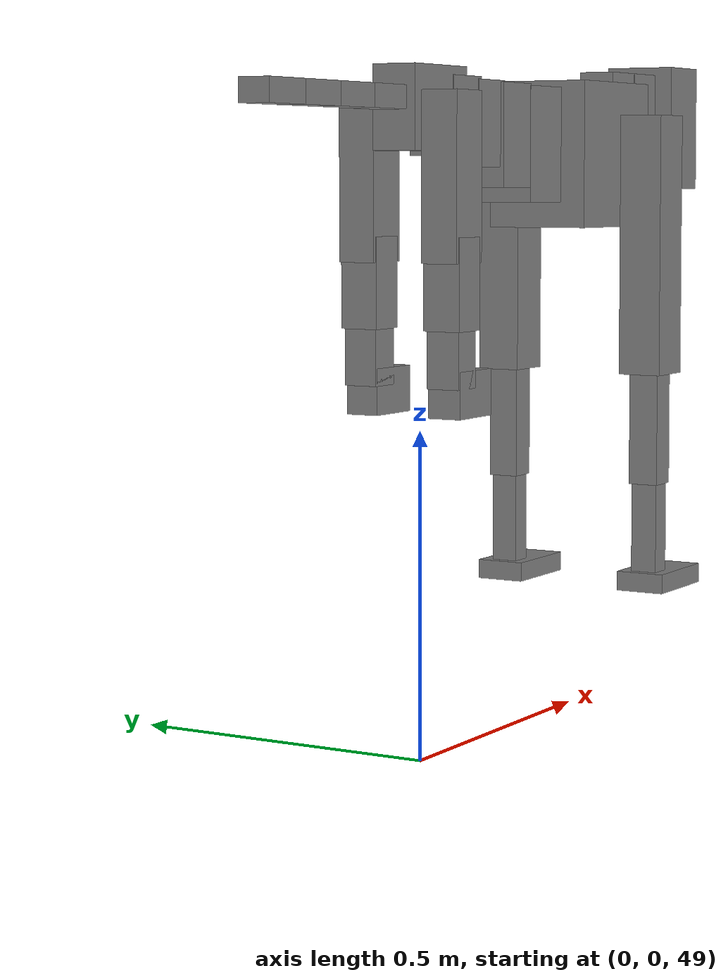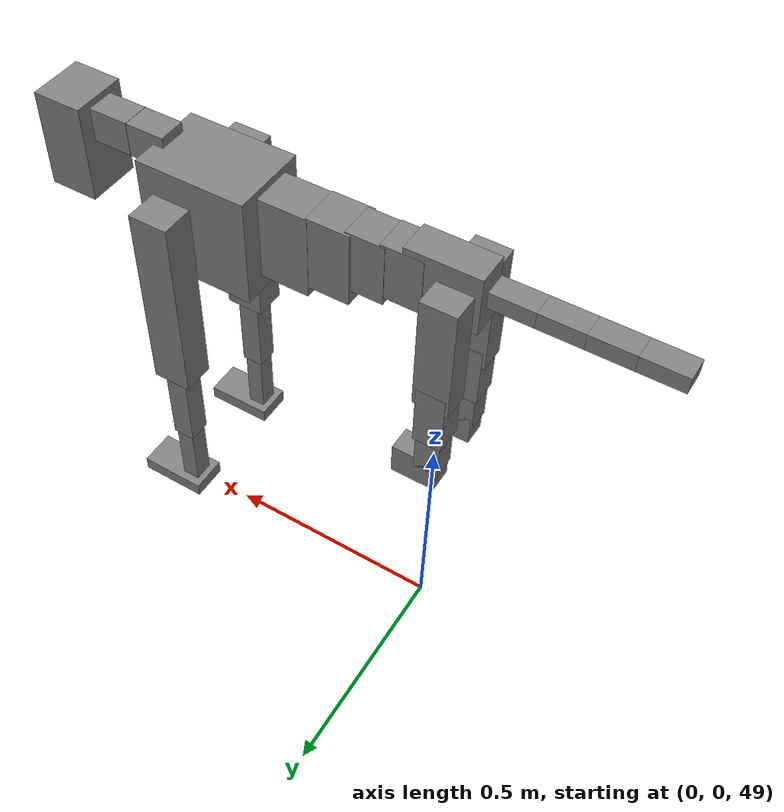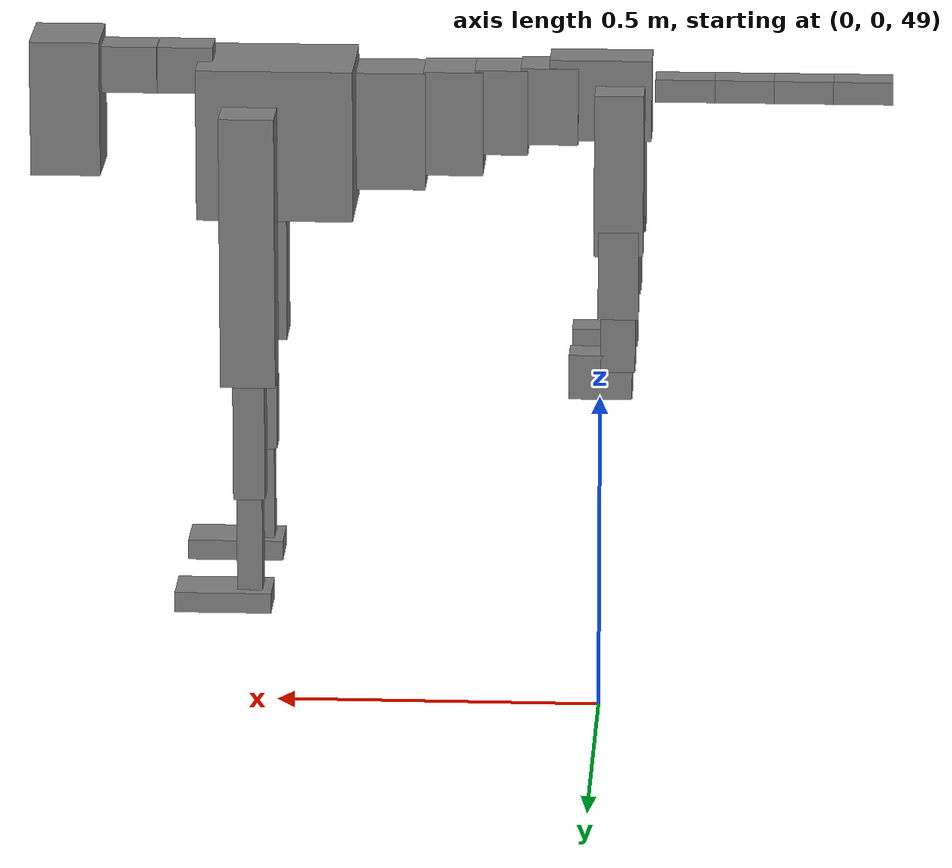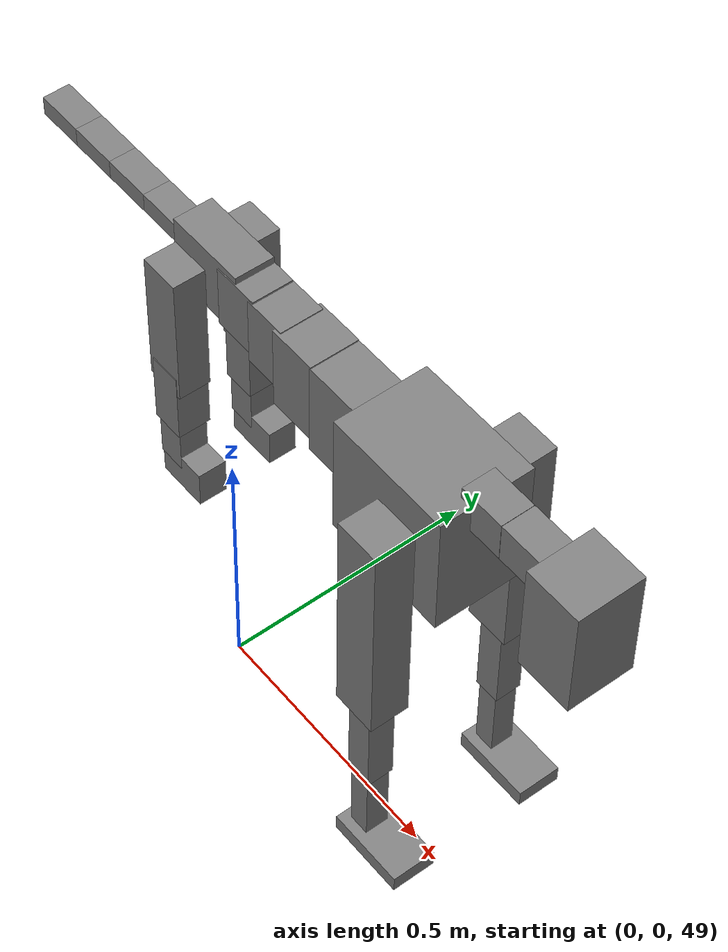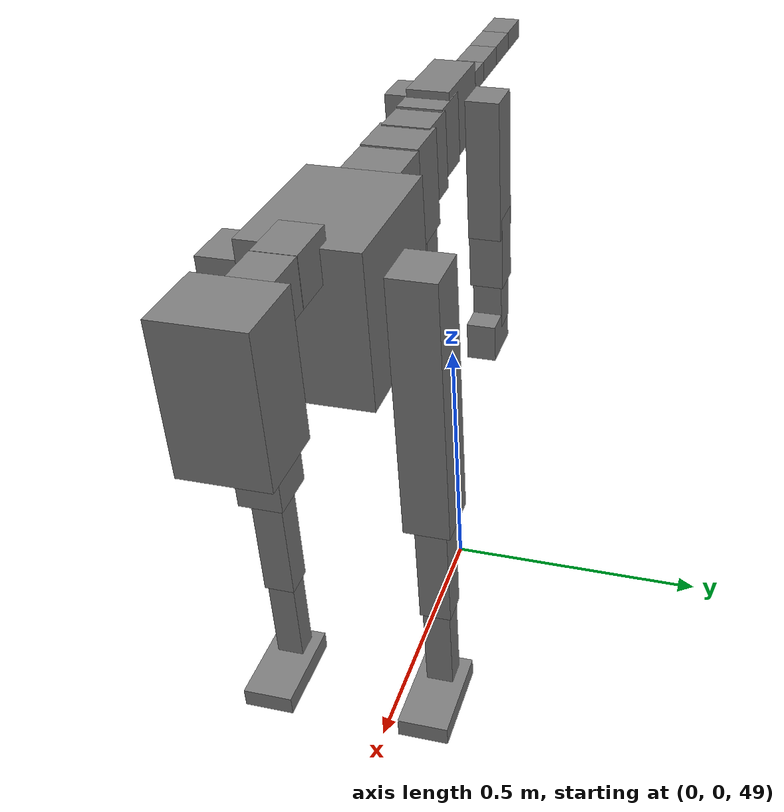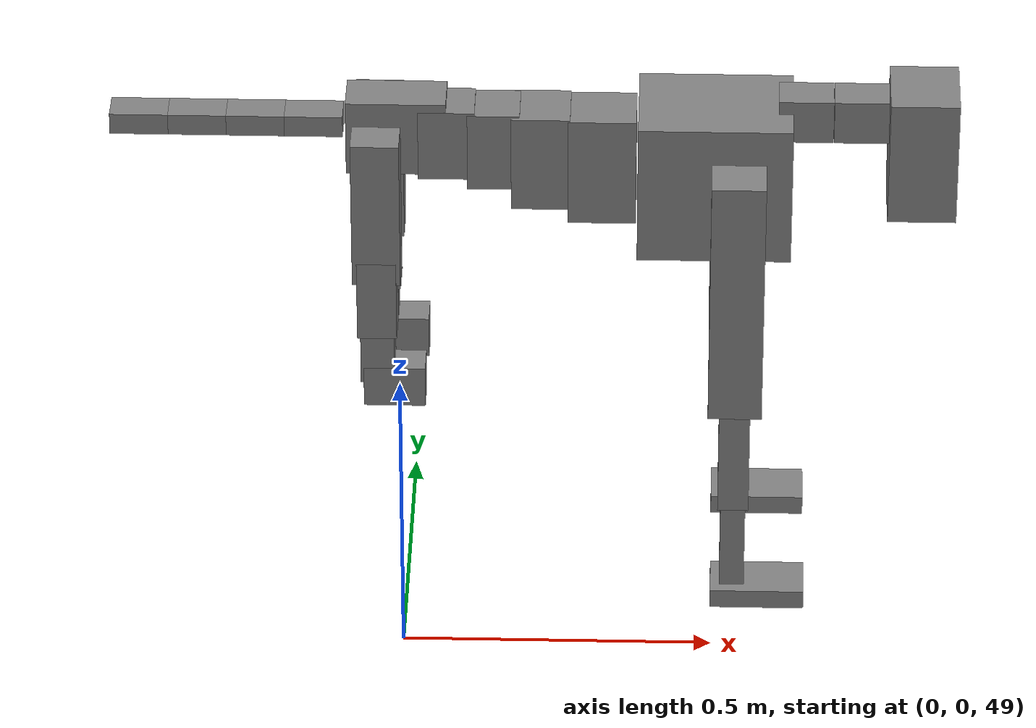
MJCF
<mujoco model="dog">

    <default>
        <joint armature="0.02" stiffness="1" damping="0.2" limited="true"/>
        <geom condim="3" friction="1 0.05 0.05" margin="0.01"/>
        <motor ctrllimited="true" ctrlrange="-1.0 1.0" forcelimited="true" gear="50"/>
    </default>

    <compiler inertiafromgeom="true" angle="radian"/>

    <option timestep="0.016" iterations="50" tolerance="1e-10" solver="Newton" jacobian="dense" cone="pyramidal"/>

    <size nconmax="20000" njmax="60000" nstack="5000000"/>
    <visual>
        <map force="0.1" zfar="30"/>
        <rgba haze="0.15 0.25 0.35 1"/>
        <quality shadowsize="2048"/>
        <global offwidth="800" offheight="800"/>
    </visual>

    <asset>
        <texture type="skybox" builtin="gradient" rgb1="0.3 0.5 0.7" rgb2="0 0 0" width="512" height="512"/>
        <texture name="texplane" type="2d" builtin="checker" rgb1=".2 .3 .4" rgb2=".1 0.15 0.2" width="512" height="512"
                 mark="cross" markrgb=".8 .8 .8"/>
        <texture name="texgeom" type="cube" builtin="flat" mark="cross" width="127" height="1278" rgb1="0.8 0.6 0.4"
                 rgb2="0.8 0.6 0.4" markrgb="1 1 1" random="0.01"/>

        <material name="matplane" reflectance="0.3" texture="texplane" texrepeat="1 1" texuniform="true"/>
        <material name="matgeom" texture="texgeom" texuniform="true" rgba="0.8 0.6 .4 1"/>
    </asset>

    <worldbody>
        <geom name="floor" pos="0 0 0" size="0 0 .25" type="plane" material="matplane" condim="3"/>

        <light directional="false" diffuse=".2 .2 .2" specular="0 0 0" pos="0 0 5" dir="0 0 -1" castshadow="false"/>
        <light mode="targetbodycom" target="torso" directional="false" diffuse=".8 .8 .8" specular="0.3 0.3 0.3"
               pos="0 0 4.0" dir="0 0 -1"/>

        <body name="root" pos="0 0 50">
            <freejoint name="root_1"/>
            <geom type="box" pos="0 0 -0.02" size="0.0774  0.0358  0.063" density="2030"/>

            <body name="spine1" pos="0.054 0 0">
                <joint name="spine1_y" axis="0 1 0" range="0 0.7" limited="true"/>
                <geom type="box" pos="0.02375 0 -0.03" size="0.04375  0.0375  0.05985" density="2030"/>

                <body name="spine2" pos="0.0612 0 0">
                    <joint name="spine2_y" axis="0 1 0" range="-0.15 0.15" limited="true"/>
                    <geom type="box" pos="0.03555  0  -0.04" size="0.04055  0.039  0.06615" density="2030"/>

                    <body name="spine3" pos="0.0730 0 0">
                        <joint name="spine3_y" axis="0 1 0" range="-0.15 0.15" limited="true"/>
                        <geom type="box" pos="0.03555  0  -0.057" size="0.04555  0.0445  0.081" density="2030"/>

                        <body name="spine4" pos="0.0780 0 0">
                            <joint name="spine4_y" axis="0 1 0" range="-0.15 0.15" limited="true"/>
                            <geom type="box" pos="0.05265  0  -0.07" size="0.05265  0.045  0.09135" density="2030"/>

                            <body name="torso" pos="0.1082 0 0">
                                <joint name="torso_y" axis="0 1 0" range="-0.15 0.15" limited="true"/>
                                <geom type="box" pos="0.11925  0  -0.085" size="0.11925  0.085  0.11745"
                                      density="2030"/>

                                <body name="neck1" pos="0.2160  0   0.0180">
                                    <joint name="neck1_y" axis="0 1 0" range="-1.2  -1" limited="true"/>
                                    <geom type="box" pos="0.0423  0  0" size="0.0423  0.03  0.036" density="2325"/>

                                    <body name="neck2" pos="0.0853  0  0">
                                        <joint name="neck2_y" axis="0 1 0" range="0.1  0" limited="true"/>
                                        <geom type="box" pos="0.0423  0  0" size="0.0423  0.03  0.036" density="2325"/>

                                        <body name="head" pos="0.0853  0  0">
                                            <joint name="head_y" axis="0 1 0" range="-0.3  -0.2" limited="true"/>
                                            <geom type="box" pos="0.0531  0  -0.055" size="0.0531  0.06  0.1044"
                                                  density="4030"/>

                                        </body>
                                    </body>
                                </body>

                                <body name="front_shoulder" pos="0.156  0   -0.0480">
                                    <joint name="front_shoulder_y" axis="0 1 0" range="-1 1.5" limited="true"/>
                                    <geom type="box" pos="0 0.13 -0.1844" size="0.0419  0.0358  0.2111" density="1158"/>
                                    <geom type="box" pos="0 -0.13 -0.1844" size="0.0419  0.0358  0.2111"
                                          density="1158"/>

                                    <body name="front_elbow" pos="0  0  -0.3689">
                                        <joint name="front_elbow_y" axis="0 1 0" range="-2 0" limited="true"/>
                                        <geom type="box" pos="0 0.13 -0.1042" size="0.0242  0.0247  0.1042"
                                              density="1081"/>
                                        <geom type="box" pos="0 -0.13 -0.1042" size="0.0242  0.0247  0.1042"
                                              density="1081"/>

                                        <body name="front_wrist" pos="0  0  -0.2083">
                                            <joint name="front_wrist_y" axis="0 1 0" range="-0.2 0" limited="true"/>
                                            <geom type="box" pos="0 0.13 -0.0803" size="0.0195  0.0217  0.0935"
                                                  density="1664"/>
                                            <geom type="box" pos="0 -0.13 -0.0803" size="0.0195  0.0217  0.0935"
                                                  density="1664"/>

                                            <body name="front_finger_end" pos="0  0  -0.1606">
                                                <joint name="front_finger_y" axis="0 1 0" range="-0.4 1"
                                                       limited="true"/>
                                                <geom type="box" pos="0.0404  0.13  -0.0009"
                                                      size="0.0740  0.0404  0.0159" density="1515"/>
                                                <geom type="box" pos="0.0404  -0.13  -0.0009"
                                                      size="0.0740  0.0404  0.0159" density="1515"/>

                                            </body>

                                        </body>
                                    </body>
                                </body>

                            </body>
                        </body>
                    </body>
                </body>
            </body>

            <body name="back_hip" pos="-0.03 0 -0.018">
                <joint name="back_hip_y" axis="0 1 0" range="-1.5 0.3" limited="true"/>
                <geom type="box" pos="0 0.07 -0.1033" size="0.0374  0.0294  0.1261" density="1154"/>
                <geom type="box" pos="0 -0.07 -0.1033" size="0.0374  0.0294  0.1261" density="1154"/>

                <body name="back_knee" pos="0  0  -0.2066">
                    <joint name="back_knee_y" axis="0 1 0" range="0 2.8" limited="true"/>
                    <geom type="box" pos="0 0.07 -0.0531" size="0.0307  0.0303  0.0686" density="1227"/>
                    <geom type="box" pos="0 -0.07 -0.0531" size="0.0307  0.0303  0.0686" density="1227"/>

                    <body name="back_ankle" pos="0  0  -0.1061">
                        <joint name="back_ankle_y" axis="0 1 0" range="-2.2 0" limited="true"/>
                        <geom type="box" pos="0 0.07 -0.0446" size="0.0263  0.0263  0.0558" density="1284"/>
                        <geom type="box" pos="0 -0.07 -0.0446" size="0.0263  0.0263  0.0558" density="1284"/>

                        <body name="back_toe_end" pos="0  0  -0.0892">
                            <joint name="back_toe_y" axis="0 1 0" range="-0.4 1" limited="true"/>
                            <geom type="box" pos="0.0263  0.07  -0.0200" size="0.0482  0.0263  0.0350" density="1515"/>
                            <geom type="box" pos="0.0263  -0.07  -0.0200" size="0.0482  0.0263  0.0350" density="1515"/>

                        </body>
                    </body>
                </body>
            </body>

            <body name="tail1" pos="-0.074 0 -0.006">
                <joint name="tail1_y" axis="0 1 0" range="-0.2 0.2" limited="true"/>
                <geom type="box" pos="-0.0536  0  0" size="0.045  0.025  0.0175" density="1587"/>

                <body name="tail2" pos="-0.09 0 0">
                    <joint name="tail2_y" axis="0 1 0" range="-0.2 0.2" limited="true"/>
                    <geom type="box" pos="-0.0536  0  0" size="0.045  0.025  0.0175" density="1587"/>

                    <body name="tail3" pos="-0.09 0 0">
                        <joint name="tail3_y" axis="0 1 0" range="-0.2 0.2" limited="true"/>
                        <geom type="box" pos="-0.0536  0  0" size="0.045  0.025  0.0175" density="1587"/>

                        <body name="tail4" pos="-0.09 0 0">
                            <joint name="tail4_y" axis="0 1 0" range="-0.2 0.2" limited="true"/>
                            <geom type="box" pos="-0.0536  0  0" size="0.045  0.025  0.0175" density="1587"/>

                        </body>
                    </body>
                </body>
            </body>
        </body>
    </worldbody>

    <actuator>
        <motor joint="spine1_y" forcerange="-150 150     "/>
        <motor joint="spine2_y" forcerange="-150 150     "/>
        <motor joint="spine3_y" forcerange="-150 150     "/>
        <motor joint="spine4_y" forcerange="-150 150     "/>
        <motor joint="torso_y" forcerange="-150 150     "/>
        <motor joint="neck1_y" forcerange="-100 100       "/>
        <motor joint="neck2_y" forcerange="-100 100       "/>
        <motor joint="head_y" forcerange="-150 150       "/>
        <motor joint="front_shoulder_y" forcerange="-181.33 157.22"/>
        <motor joint="front_elbow_y" forcerange="-105.65 174.27"/>
        <motor joint="front_wrist_y" forcerange="-108.95 64.42"/>
        <motor joint="front_finger_y" forcerange="-82.14 93.19"/>
        <motor joint="back_hip_y" forcerange="-341.76 249.87"/>
        <motor joint="back_knee_y" forcerange="-340.43 300.22"/>
        <motor joint="back_angle_y" forcerange="-184.28 136.69"/>
        <motor joint="back_toe_y" forcerange="-51.44 78.81"/>
        <motor joint="tail1_y" forcerange="-50 50     "/>
        <motor joint="tail2_y" forcerange="-50 50     "/>
        <motor joint="tail3_y" forcerange="-50 50     "/>
        <motor joint="tail4_y" forcerange="-50 50     "/>
    </actuator>
</mujoco>
